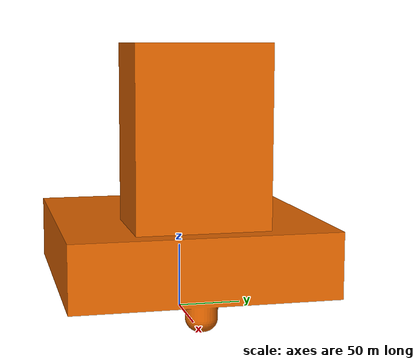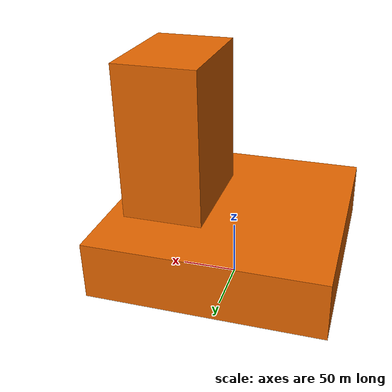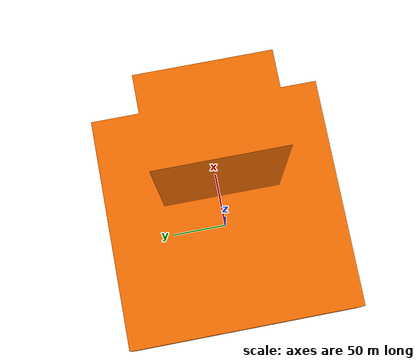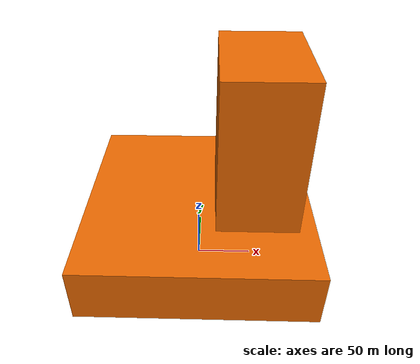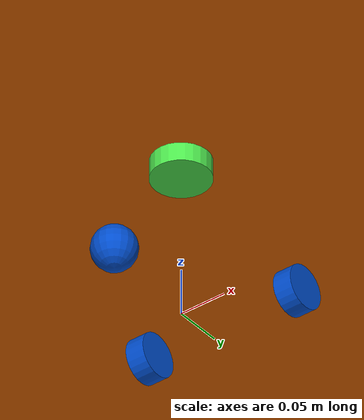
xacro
<?xml version="1.0"?>
<robot xmlns:xacro="http://www.ros.org/wiki/xacro"  name="robot">

    <!-- Start GZ or Ignition depending on ROS 2 Version -->
    <xacro:arg name="use_ros2_control" default="true"/>
    <xacro:arg name="sim_mode" default="false"/>
    <xacro:arg name="is_ignition" default="true"/>

    <xacro:include filename="rosbot_core.xacro" />

    <xacro:include filename="rosbot_lidar.xacro" />
    <xacro:include filename="rosbot_imu.xacro" />
    <xacro:include filename="rosbot_gazebo.xacro" />

    <xacro:include filename="rosbot_ros2_control.xacro" />

</robot>

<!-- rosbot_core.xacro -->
<robot xmlns:xacro="http://www.ros.org/wiki/xacro" >

    <!-- BASE_FOOTPRINT -->
    <link name="base_footprint"/>
    <joint name="base_joint" type="fixed">
        <parent link="base_footprint"/>
        <child link="base_link"/>
        <origin xyz="0 0 0.040" rpy="0 0 0"/>
    </joint>

     <!-- Base Link -->
    <link name="base_link">
        <visual>
        <origin xyz="0 0 0" rpy="0 0 0"/>
        <geometry>
            <mesh filename="package://rosbot_description/meshes/base_link.stl"/>
        </geometry>
        <material name="burnt_orange">
            <color rgba="0.9 0.4 0.0 1.0"/>
        </material>
        </visual>
        <collision>
            <origin xyz="0 0 0" rpy="0 0 0"/>
            <geometry>
                <mesh filename="package://rosbot_description/meshes/base_link.stl"/>
            </geometry>
        </collision>
        <inertial>
        <origin xyz="-0.0001 0.012743 0.047204" rpy="0 0 0"/>
        <mass value="1.532453"/>
        <inertia
            ixx="0.009044" ixy="-0.0001165" ixz="-0.0000436358"
            iyy="0.006928" iyz="0.0004711"
            izz="0.0105"/>
        </inertial>
    </link>

    <!-- LEFT WHEEL LINK -->

    <joint name="wheel_left_joint" type="continuous">
        <parent link="base_link"/>
        <child link="wheel_left_link"/>
        <origin xyz="0.088 0.06100 -0.01800" rpy="0 0 0" />
        <axis xyz="1 0 0"/>
    </joint>

    <link name="wheel_left_link">
        <visual>
            <origin xyz="0 0 0" rpy="0 1.5708 0"/>
            <geometry>
                <cylinder radius="0.023" length= "0.0200"/>
            </geometry>
            <material name="metallic_blue">
                <color rgba="0.0 0.3 0.8 1.0"/>
            </material>
        </visual>
        <collision>
            <origin xyz="0 0 0" rpy="0 1.5708 0"/>
            <geometry>
                <cylinder radius="0.023" length= "0.0200"/>
            </geometry>
        </collision>
        <inertial>
            <origin xyz="0 0 0" rpy="0 1.5708 0"/>
            <mass value="0.03"/>
            <inertia ixx="0.000048" ixy="0.0" ixz="0.0"
                iyy="0.000048" iyz="0.0"
                izz="0.0000079"/>
        </inertial>
    </link>

    <!-- RIGHT WHEEL LINK -->

    <joint name="wheel_right_joint" type="continuous">
        <parent link="base_link"/>
        <child link="wheel_right_link"/>
        <axis xyz="-1 0 0"/>
        <origin rpy="0 0 0" xyz="-0.085 0.06100 -0.01750"/>
    </joint>

    <link name="wheel_right_link">
        <visual>
            <origin xyz="0 0 0" rpy="0 1.5708 0"/>
            <geometry>
                <cylinder radius="0.023" length= "0.0200"/>
            </geometry>
            <material name="metallic_blue">
                <color rgba="0.0 0.3 0.8 1.0"/>
            </material>
        </visual>
        <collision>
            <origin xyz="0 0 0" rpy="0 1.5708 0"/>
            <geometry>
                <cylinder radius="0.023" length= "0.0200"/>
            </geometry>
        </collision>
        <inertial>
            <origin xyz="0 0 0" rpy="0 1.5708 0"/>
            <mass value="0.03"/>
            <inertia ixx="0.000048" ixy="0.0" ixz="0.0"
                    iyy="0.000048" iyz="0.0"
                    izz="0.0000079"/>
        </inertial>
    </link>

    <!-- CASTER WHEEL LINK -->

    <joint name="caster_wheel_joint" type="fixed">
        <parent link="base_link"/>
        <child link="caster_wheel_link"/>
        <origin rpy="0 0 0" xyz="0 -0.100 -0.023"/>
    </joint>

    <link name="caster_wheel_link">
        <visual>
            <origin rpy="0 0 0" xyz="0 0 0"/>
            <geometry>
                <sphere radius="0.023"/>
            </geometry>
            <material name="metallic_blue">
                <color rgba="0.0 0.3 0.8 1.0"/>
            </material>
        </visual>
        <collision>
            <origin xyz="0 0 0" rpy="0 0 0"/>
            <geometry>
                <sphere radius="0.023"/>
            </geometry>
        </collision>
        <inertial>
            <origin xyz="0 0 0" rpy="0 0 0"/>
            <mass value="0.05"/>
            <inertia ixx="0.000016" ixy="0.0" ixz="0.0"
                    iyy="0.000016" iyz="0.0"
                    izz="0.000016"/>
        </inertial>
    </link>

</robot>

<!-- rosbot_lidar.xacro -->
<robot xmlns:xacro="http://www.ros.org/wiki/xacro" >

    <joint name="lidar_joint" type="fixed">
        <parent link="base_link"/>
        <child link="laser_link"/>
        <origin xyz="0 0 0.125" rpy="0 0 0"/>
    </joint>

    <link name="laser_link">
        <visual>
            <origin xyz="0 0 0" rpy="0 0 0"/>
            <geometry>
                <cylinder radius="0.03" length="0.02"/>
            </geometry>
            <material name="lime_green">
                <color rgba="0.3 0.9 0.3 1.0"/>
            </material>
        </visual>
        <collision>
            <origin xyz="0 0 0" rpy="0 0 0" />
            <geometry>
                <cylinder radius="0.03" length="0.02"/>
            </geometry>
        </collision>
    </link>

</robot>

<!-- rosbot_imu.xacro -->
<robot xmlns:xacro="http://www.ros.org/wiki/xacro" >
    <xacro:arg name="imu_visual"    default="false"/>

    <joint name="imu_joint" type="fixed">
        <parent link="base_link"/>
        <child link="imu_link"/>
        <origin xyz="0.0 0 0.068" rpy="0 0 0"/>
    </joint>

    <link name="imu_link"/>

    <gazebo reference="imu_link">
        <sensor name="imu_sensor" type="imu">
            <ignition_frame_id>imu_link</ignition_frame_id>
            <plugin filename="ignition-gazebo-imu-system" name="ignition::gazebo::systems::Imu"/>
            <topic>imu</topic>
            <always_on>true</always_on>
            <update_rate>100</update_rate>
            <visualize>true</visualize>
            <imu>
                <angular_velocity>
                    <x>
                        <noise type="gaussian">
                        <mean>0.0</mean>
                        <stddev>2e-4</stddev>
                        <bias_mean>0.0000075</bias_mean>
                        <bias_stddev>0.0000008</bias_stddev>
                        </noise>
                    </x>
                    <y>
                        <noise type="gaussian">
                        <mean>0.0</mean>
                        <stddev>2e-4</stddev>
                        <bias_mean>0.0000075</bias_mean>
                        <bias_stddev>0.0000008</bias_stddev>
                        </noise>
                    </y>
                    <z>
                        <noise type="gaussian">
                        <mean>0.0</mean>
                        <stddev>2e-4</stddev>
                        <bias_mean>0.0000075</bias_mean>
                        <bias_stddev>0.0000008</bias_stddev>
                        </noise>
                    </z>
                </angular_velocity>
                <linear_acceleration>
                    <x>
                        <noise type="gaussian">
                        <mean>0.0</mean>
                        <stddev>1.7e-2</stddev>
                        <bias_mean>0.1</bias_mean>
                        <bias_stddev>0.001</bias_stddev>
                        </noise>
                    </x>
                    <y>
                        <noise type="gaussian">
                        <mean>0.0</mean>
                        <stddev>1.7e-2</stddev>
                        <bias_mean>0.1</bias_mean>
                        <bias_stddev>0.001</bias_stddev>
                        </noise>
                    </y>
                    <z>
                        <noise type="gaussian">
                        <mean>0.0</mean>
                        <stddev>1.7e-2</stddev>
                        <bias_mean>0.1</bias_mean>
                        <bias_stddev>0.001</bias_stddev>
                        </noise>
                    </z>
                </linear_acceleration>
            </imu>
        </sensor>
    </gazebo>

</robot>
